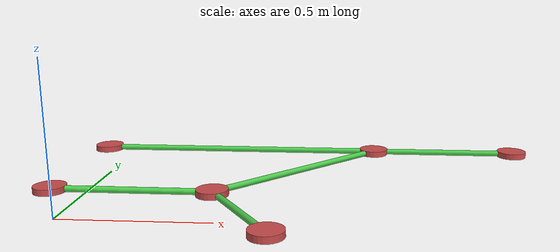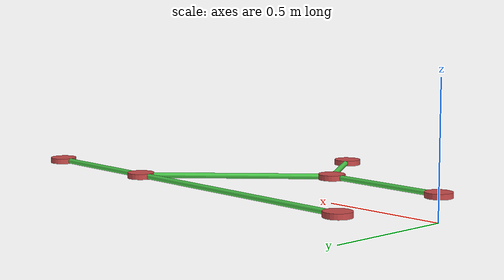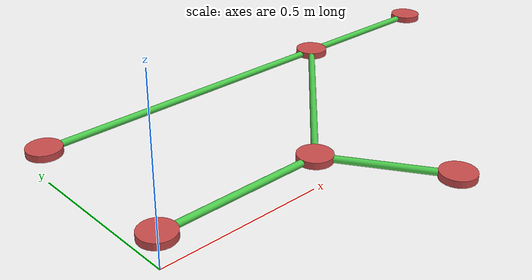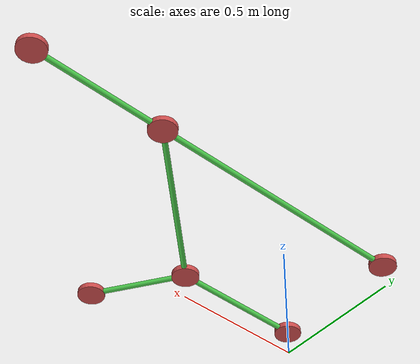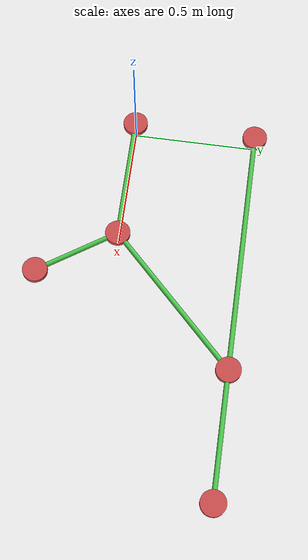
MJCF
<?xml version='1.0' encoding='UTF-8'?>
<mujoco>
  <option gravity="0 0 -9.81" timestep="0.002">
    <flag warmstart="enable"/>
  </option>
  <visual>
    <global offwidth="800" offheight="800"/>
    <quality shadowsize="4096"/>
    <map force="0.1" fogstart="3" fogend="5" znear="0.1" zfar="50"/>
  </visual>
  <asset>
    <texture type="skybox" builtin="gradient" rgb1="0.3 0.5 0.7" rgb2="0 0 0" width="512" height="512"/>
    <material name="arm1" rgba="0.8 0.3 0.3 1"/>
    <material name="arm2" rgba="0.3 0.8 0.3 1"/>
    <material name="arm3" rgba="0.3 0.3 0.8 1"/>
  </asset>
  <option gravity="0 0 -9.81" timestep="0.001">
    <flag warmstart="enable"/>
  </option>
  <default>
    <joint damping="1.0" armature="0.1" frictionloss="0.1"/>
  </default>
  <worldbody>
    <body name="base" pos="0.0 0.0 0.1">
      <geom name="base_geom" type="cylinder" size="0.05 0.01" material="arm1"/>
      <joint name="joint1" type="hinge" axis="0 0 1" pos="0 0 -0.05"/>
      <site name="site_1" pos="0 0 0"/>
      <body name="link2" pos="0.5 0.0 0">
        <geom name="link2_geom" type="cylinder" size="0.05 0.01" material="arm1"/>
        <joint name="joint2" type="hinge" axis="0 0 1" pos="0 0 -0.05"/>
        <site name="site_2" pos="0 0 0"/>
        <body name="link3" pos="0.5 0.5 0">
          <geom name="link3_geom" type="cylinder" size="0.05 0.01" material="arm1"/>
          <joint name="joint3" type="hinge" axis="0 0 1" pos="0 0 -0.05"/>
          <site name="site_3" pos="0 0 0"/>
          <body name="link4" pos="-1.0 0.0 0">
            <geom name="link4_geom" type="cylinder" size="0.05 0.01" material="arm1"/>
            <joint name="joint4" type="hinge" axis="0 0 1" pos="0 0 -0.05"/>
            <site name="site_4" pos="0 0 0"/>
          </body>
          <geom name="capsule_3_4" type="capsule" fromto="0 0 0 -1.0 0.0 0" size="0.01" material="arm2"/>
          <geom name="capsule_3_6" type="capsule" fromto="0 0 0 0.5 0.0 0.0" size="0.01" material="arm2"/>
          <site name="conn_site_3_6" pos="0.5 0.0 0.0"/>
        </body>
        <geom name="capsule_2_3" type="capsule" fromto="0 0 0 0.5 0.5 0" size="0.01" material="arm2"/>
        <geom name="capsule_2_5" type="capsule" fromto="0 0 0 0.19999999999999996 -0.3 0.0" size="0.01" material="arm2"/>
        <site name="conn_site_2_5" pos="0.19999999999999996 -0.3 0.0"/>
      </body>
      <geom name="capsule_1_2" type="capsule" fromto="0 0 0 0.5 0.0 0" size="0.01" material="arm2"/>
    </body>
    <body name="end5" pos="0.7 -0.3 0.1">
      <geom name="end5_geom" type="cylinder" size="0.05 0.01" material="arm1"/>
      <site name="site_5" pos="0 0 0"/>
    </body>
    <body name="end6" pos="1.5 0.5 0.1">
      <geom name="end6_geom" type="cylinder" size="0.05 0.01" material="arm1"/>
      <site name="site_6" pos="0 0 0"/>
    </body>
  </worldbody>
  <tendon>
    <spatial name="tendon_3_6" limited="true" range="0 0.0001" width="0.003" rgba="0.8 0.8 0.8 1">
      <site site="conn_site_3_6"/>
      <site site="site_6"/>
    </spatial>
    <spatial name="tendon_2_5" limited="true" range="0 0.0001" width="0.003" rgba="0.8 0.8 0.8 1">
      <site site="conn_site_2_5"/>
      <site site="site_5"/>
    </spatial>
  </tendon>
  <actuator>
    <position name="pos_joint1" joint="joint1" kp="10.0" ctrlrange="-3.14159 3.14159"/>
    <velocity name="vel_joint1" joint="joint1" kv="1.0"/>
  </actuator>
</mujoco>
